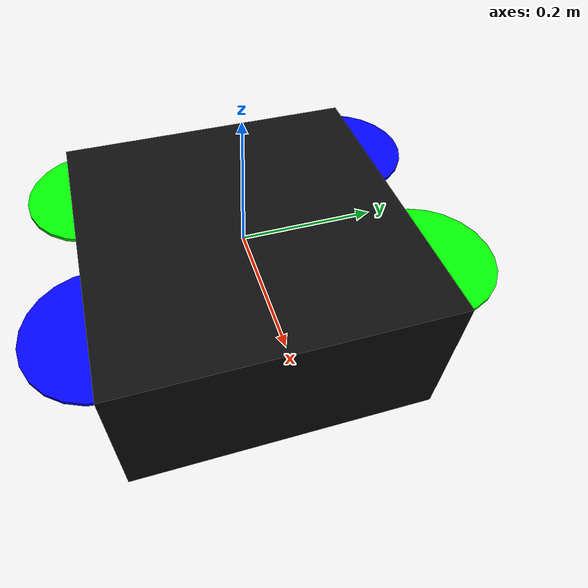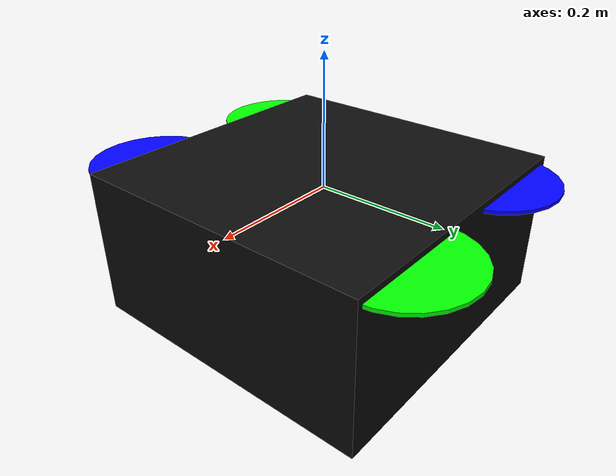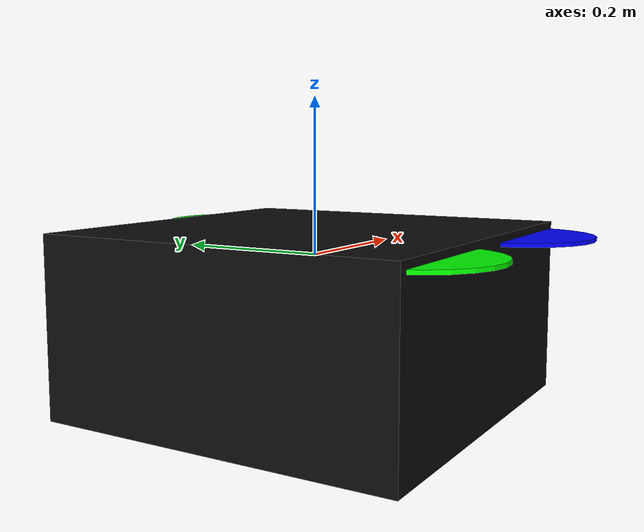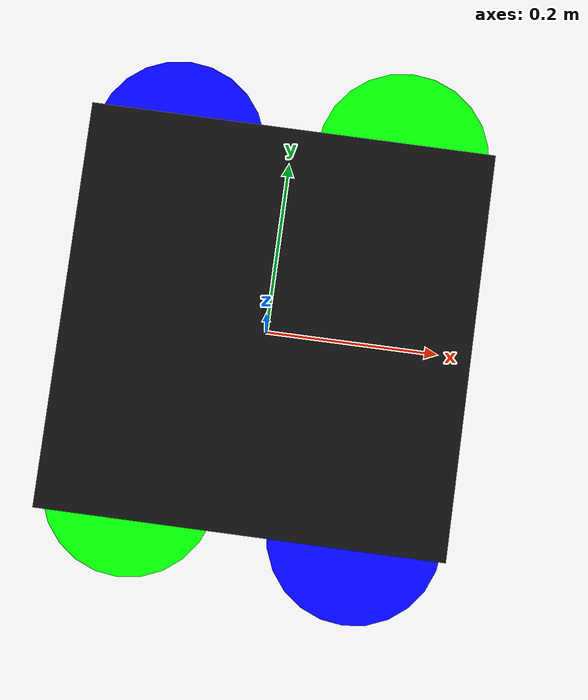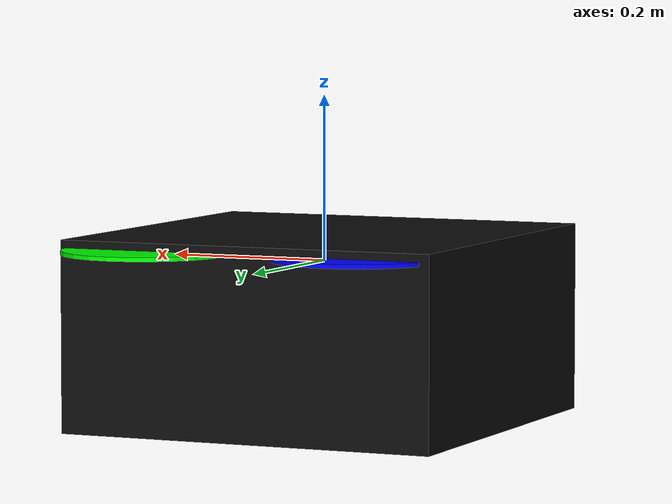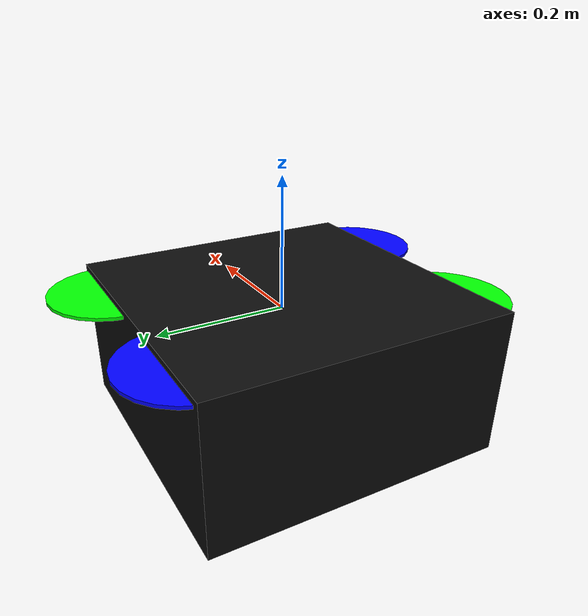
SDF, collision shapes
<?xml version='1.0'?>
<sdf version='1.9'>
  <model name='iris_with_standoffs'>
    <pose>0 0 0 0 0 0</pose>
    <link name='base_link'>
      <velocity_decay>
        <linear>0.0</linear>
        <angular>0.0</angular>
      </velocity_decay>
      <inertial>
        <pose>0 0 0 0 0 0</pose>
        <mass>1.5</mass>
        <inertia>
          <ixx>0.008</ixx>
          <ixy>0</ixy>
          <ixz>0</ixz>
          <iyy>0.015</iyy>
          <iyz>0</iyz>
          <izz>0.017</izz>
        </inertia>
      </inertial>
      <collision name='base_collision'>
        <pose>0 0 -0.08 0 0 0</pose>
        <geometry>
          <box>
            <size>0.47 0.47 0.23</size>
          </box>
        </geometry>
        <surface>
          <contact>
            <ode>
              <max_vel>100.0</max_vel>
              <min_depth>0.001</min_depth>
            </ode>
          </contact>
          <friction>
            <ode>
              <mu>100000.0</mu>
              <mu2>100000.0</mu2>
            </ode>
          </friction>
        </surface>
      </collision>
      <visual name='base_visual'>
        <geometry>
          <mesh>
            <uri>model://iris_with_standoffs/meshes/iris.dae</uri>
          </mesh>
        </geometry>
        <material>
          <ambient>0.05 0.05 0.05</ambient>
          <diffuse>0.05 0.05 0.05</diffuse>
          <specular>1 1 1 1</specular>
          <pbr>
            <metal>
              <metalness>0.5</metalness>
              <roughness>0.5</roughness>
            </metal>
          </pbr>
        </material>
      </visual>

      <visual name='front_left_leg_visual'>
        <pose>0.123 0.22 -0.11 0 0 0</pose>
        <geometry>
          <cylinder>
            <radius>0.005</radius>
            <length>0.17</length>
          </cylinder>
        </geometry>
        <material>
          <ambient>0.05 0.05 0.05</ambient>
          <diffuse>0.05 0.05 0.05</diffuse>
          <specular>0.01 0.01 0.01 1.0</specular>
          <pbr>
            <metal>
              <metalness>0.5</metalness>
              <roughness>0.5</roughness>
            </metal>
          </pbr>
        </material>
      </visual>
      <visual name='front_right_leg_visual'>
        <pose>0.123 -0.22 -0.11 0 0 0</pose>
        <geometry>
          <cylinder>
            <radius>0.005</radius>
            <length>0.17</length>
          </cylinder>
        </geometry>
        <material>
          <ambient>0.05 0.05 0.05</ambient>
          <diffuse>0.05 0.05 0.05</diffuse>
          <specular>0.01 0.01 0.01 1.0</specular>
          <pbr>
            <metal>
              <metalness>0.5</metalness>
              <roughness>0.5</roughness>
            </metal>
          </pbr>
        </material>
      </visual>
      <visual name='rear_left_leg_visual'>
        <pose>-0.140 0.21 -0.11 0 0 0</pose>
        <geometry>
          <cylinder>
            <radius>0.005</radius>
            <length>0.17</length>
          </cylinder>
        </geometry>
        <material>
          <ambient>0.05 0.05 0.05</ambient>
          <diffuse>0.05 0.05 0.05</diffuse>
          <specular>0.01 0.01 0.01 1.0</specular>
          <pbr>
            <metal>
              <metalness>0.5</metalness>
              <roughness>0.5</roughness>
            </metal>
          </pbr>
        </material>
      </visual>
      <visual name='rear_right_leg_visual'>
        <pose>-0.140 -0.21 -0.11 0 0 0</pose>
        <geometry>
          <cylinder>
            <radius>0.005</radius>
            <length>0.17</length>
          </cylinder>
        </geometry>
        <material>
          <ambient>0.05 0.05 0.05</ambient>
          <diffuse>0.05 0.05 0.05</diffuse>
          <specular>0.01 0.01 0.01 1.0</specular>
          <pbr>
            <metal>
              <metalness>0.5</metalness>
              <roughness>0.5</roughness>
            </metal>
          </pbr>
        </material>
      </visual>

    </link>

    <!-- IMU Link (unchanged) -->
    <link name='imu_link'>
      <inertial>
        <pose>0 0 0 0 0 0</pose>
        <mass>0.15</mass>
        <inertia>
          <ixx>0.00001</ixx>
          <ixy>0</ixy>
          <ixz>0</ixz>
          <iyy>0.00002</iyy>
          <iyz>0</iyz>
          <izz>0.00002</izz>
        </inertia>
      </inertial>
      <sensor name="imu_sensor" type="imu">
        <gz_frame_id>imu_link</gz_frame_id>
        <pose degrees="true">0 0 0 180 0 0</pose>
        <always_on>1</always_on>
        <update_rate>1000.0</update_rate>
      </sensor>
    </link>
    <joint name='imu_joint' type='revolute'>
      <child>imu_link</child>
      <parent>base_link</parent>
      <axis>
        <xyz>0 0 1</xyz>
        <limit>
          <lower>0</lower>
          <upper>0</upper>
          <effort>0</effort>
          <velocity>0</velocity>
        </limit>
        <dynamics>
          <damping>1.0</damping>
        </dynamics>
      </axis>
    </joint>

    <link name="lidar_link">
      <!-- Link pose: 5 cm below base_link centre, no rotation -->
      <pose>0 0 -0.05 0 0 0</pose>

      <inertial>
        <!-- TF03-180 mass: 89g -->
        <mass>0.089</mass>
        <inertia>
          <!-- Box 44x43x32 mm inertia (thin slab approximation) -->
          <ixx>0.000034</ixx>
          <ixy>0</ixy>
          <ixz>0</ixz>
          <iyy>0.000035</iyy>
          <iyz>0</iyz>
          <izz>0.000033</izz>
        </inertia>
      </inertial>

      <!-- Physical body: 44x43x32 mm aluminium box (TF03-180 dimensions) -->
      <visual name="lidar_body_visual">
        <pose>0 0 0 0 0 0</pose>
        <geometry>
          <box>
            <size>0.044 0.043 0.032</size>
          </box>
        </geometry>
        <material>
          <ambient>0.2 0.2 0.2 1</ambient>
          <diffuse>0.3 0.3 0.3 1</diffuse>
          <specular>0.5 0.5 0.5 1</specular>
        </material>
      </visual>
      <collision name="lidar_body_collision">
        <pose>0 0 0 0 0 0</pose>
        <geometry>
          <box>
            <size>0.044 0.043 0.032</size>
          </box>
        </geometry>
      </collision>

      <sensor name="tf03_180_lidar" type="gpu_lidar">
        <topic>/lidar_down</topic>

        <pose degrees="true">0 0 0 0 90 0</pose>

        <!-- TF03-180 default update rate: 100 Hz -->
        <update_rate>100</update_rate>

        <lidar>
          <scan>
            <!-- Single-beam sensor: 1 sample, FOV = 0.5 deg = 0.00873 rad -->
            <horizontal>
              <samples>1</samples>
              <resolution>1</resolution>
              <min_angle>-0.004363</min_angle>   <!-- -0.25 deg -->
              <max_angle>0.004363</max_angle>    <!--  +0.25 deg -->
            </horizontal>
            <vertical>
              <samples>1</samples>
              <resolution>1</resolution>
              <min_angle>-0.004363</min_angle>   <!-- -0.25 deg -->
              <max_angle>0.004363</max_angle>    <!--  +0.25 deg -->
            </vertical>
          </scan>

          <range>
            <!-- TF03-180: min 0.1m, max 180m (90% reflectivity), resolution 1cm -->
            <min>0.1</min>
            <max>180.0</max>
            <resolution>0.01</resolution>
          </range>

          <noise>
            <type>gaussian</type>
            <mean>0.0</mean>
            <stddev>0.03</stddev>
          </noise>
        </lidar>

        <always_on>1</always_on>
        <visualize>true</visualize>
      </sensor>
    </link>

    <!-- Fixed joint: rigidly attaches lidar_link to base_link -->
    <joint name='lidar_joint' type='fixed'>
      <child>lidar_link</child>
      <parent>base_link</parent>
    </joint>

    <!-- Rotors (all unchanged) -->
    <link name='rotor_0'>
      <pose>0.13 -0.22 0.023 0 0 0</pose>
      <inertial>
        <pose>0 0 0 0 0 0</pose>
        <mass>0.025</mass>
        <inertia>
          <ixx>9.75e-06</ixx>
          <ixy>0</ixy>
          <ixz>0</ixz>
          <iyy>0.000166704</iyy>
          <iyz>0</iyz>
          <izz>0.000167604</izz>
        </inertia>
      </inertial>
      <collision name='rotor_0_collision'>
        <pose>0 0 0 0 0 0</pose>
        <geometry>
          <cylinder>
            <length>0.005</length>
            <radius>0.1</radius>
          </cylinder>
        </geometry>
        <surface>
          <contact>
            <ode/>
          </contact>
          <friction>
            <ode/>
          </friction>
        </surface>
      </collision>
      <visual name='rotor_0_visual'>
        <pose>0 0 0 0 0 0</pose>
        <geometry>
          <mesh>
            <scale>1 1 1</scale>
            <uri>model://iris_with_standoffs/meshes/iris_prop_ccw.dae</uri>
          </mesh>
        </geometry>
        <material>
          <ambient>0 0 1</ambient>
          <diffuse>0 0 1</diffuse>
          <specular>1 1 1 1</specular>
          <pbr>
            <metal>
              <metalness>0.5</metalness>
              <roughness>0.5</roughness>
            </metal>
          </pbr>
        </material>
      </visual>
      <gravity>1</gravity>
      <velocity_decay/>
      <self_collide>0</self_collide>
    </link>
    <joint name='rotor_0_joint' type='revolute'>
      <child>rotor_0</child>
      <parent>base_link</parent>
      <axis>
        <xyz>0 0 1</xyz>
        <limit>
          <lower>-1e+16</lower>
          <upper>1e+16</upper>
        </limit>
        <dynamics>
          <damping>0.004</damping>
        </dynamics>
      </axis>
      <physics>
        <ode>
          <implicit_spring_damper>1</implicit_spring_damper>
        </ode>
      </physics>
    </joint>
    <link name='rotor_1'>
      <pose>-0.13 0.2 0.023 0 0 0</pose>
      <inertial>
        <pose>0 0 0 0 0 0</pose>
        <mass>0.025</mass>
        <inertia>
          <ixx>9.75e-06</ixx>
          <ixy>0</ixy>
          <ixz>0</ixz>
          <iyy>0.000166704</iyy>
          <iyz>0</iyz>
          <izz>0.000167604</izz>
        </inertia>
      </inertial>
      <collision name='rotor_1_collision'>
        <pose>0 0 0 0 0 0</pose>
        <geometry>
          <cylinder>
            <length>0.005</length>
            <radius>0.1</radius>
          </cylinder>
        </geometry>
        <surface>
          <contact>
            <ode/>
          </contact>
          <friction>
            <ode/>
          </friction>
        </surface>
      </collision>
      <visual name='rotor_1_visual'>
        <pose>0 0 0 0 0 0</pose>
        <geometry>
          <mesh>
            <scale>1 1 1</scale>
            <uri>model://iris_with_standoffs/meshes/iris_prop_ccw.dae</uri>
          </mesh>
        </geometry>
        <material>
          <ambient>0 0 1 1</ambient>
          <diffuse>0 0 1 1</diffuse>
          <specular>1 1 1 1</specular>
          <pbr>
            <metal>
              <metalness>0.5</metalness>
              <roughness>0.5</roughness>
            </metal>
          </pbr>
        </material>
      </visual>
      <gravity>1</gravity>
      <velocity_decay/>
      <self_collide>0</self_collide>
    </link>
    <joint name='rotor_1_joint' type='revolute'>
      <child>rotor_1</child>
      <parent>base_link</parent>
      <axis>
        <xyz>0 0 1</xyz>
        <limit>
          <lower>-1e+16</lower>
          <upper>1e+16</upper>
        </limit>
        <dynamics>
          <damping>0.004</damping>
        </dynamics>
      </axis>
      <physics>
        <ode>
          <implicit_spring_damper>1</implicit_spring_damper>
        </ode>
      </physics>
    </joint>
    <link name='rotor_2'>
      <pose>0.13 0.22 0.023 0 0 0</pose>
      <inertial>
        <pose>0 0 0 0 0 0</pose>
        <mass>0.025</mass>
        <inertia>
          <ixx>9.75e-06</ixx>
          <ixy>0</ixy>
          <ixz>0</ixz>
          <iyy>0.000166704</iyy>
          <iyz>0</iyz>
          <izz>0.000167604</izz>
        </inertia>
      </inertial>
      <collision name='rotor_2_collision'>
        <pose>0 0 0 0 0 0</pose>
        <geometry>
          <cylinder>
            <length>0.005</length>
            <radius>0.1</radius>
          </cylinder>
        </geometry>
        <surface>
          <contact>
            <ode/>
          </contact>
          <friction>
            <ode/>
          </friction>
        </surface>
      </collision>
      <visual name='rotor_2_visual'>
        <pose>0 0 0 0 0 0</pose>
        <geometry>
          <mesh>
            <scale>1 1 1</scale>
            <uri>model://iris_with_standoffs/meshes/iris_prop_cw.dae</uri>
          </mesh>
        </geometry>
        <material>
          <ambient>0 1 0</ambient>
          <diffuse>0 1 0</diffuse>
          <specular>1 1 1 1</specular>
          <pbr>
            <metal>
              <metalness>0.5</metalness>
              <roughness>0.5</roughness>
            </metal>
          </pbr>
        </material>
      </visual>
      <gravity>1</gravity>
      <velocity_decay/>
      <self_collide>0</self_collide>
    </link>
    <joint name='rotor_2_joint' type='revolute'>
      <child>rotor_2</child>
      <parent>base_link</parent>
      <axis>
        <xyz>0 0 1</xyz>
        <limit>
          <lower>-1e+16</lower>
          <upper>1e+16</upper>
        </limit>
        <dynamics>
          <damping>0.004</damping>
        </dynamics>
      </axis>
      <physics>
        <ode>
          <implicit_spring_damper>1</implicit_spring_damper>
        </ode>
      </physics>
    </joint>
    <link name='rotor_3'>
      <pose>-0.13 -0.2 0.023 0 0 0</pose>
      <inertial>
        <pose>0 0 0 0 0 0</pose>
        <mass>0.025</mass>
        <inertia>
          <ixx>9.75e-06</ixx>
          <ixy>0</ixy>
          <ixz>0</ixz>
          <iyy>0.000166704</iyy>
          <iyz>0</iyz>
          <izz>0.000167604</izz>
        </inertia>
      </inertial>
      <collision name='rotor_3_collision'>
        <pose>0 0 0 0 0 0</pose>
        <geometry>
          <cylinder>
            <length>0.005</length>
            <radius>0.1</radius>
          </cylinder>
        </geometry>
        <surface>
          <contact>
            <ode/>
          </contact>
          <friction>
            <ode/>
          </friction>
        </surface>
      </collision>
      <visual name='rotor_3_visual'>
        <pose>0 0 0 0 0 0</pose>
        <geometry>
          <mesh>
            <scale>1 1 1</scale>
            <uri>model://iris_with_standoffs/meshes/iris_prop_cw.dae</uri>
          </mesh>
        </geometry>
        <material>
          <ambient>0 1 0</ambient>
          <diffuse>0 1 0</diffuse>
          <specular>1 1 1 1</specular>
          <pbr>
            <metal>
              <metalness>0.5</metalness>
              <roughness>0.5</roughness>
            </metal>
          </pbr>
        </material>
      </visual>
      <gravity>1</gravity>
      <velocity_decay/>
      <self_collide>0</self_collide>
    </link>
    <joint name='rotor_3_joint' type='revolute'>
      <child>rotor_3</child>
      <parent>base_link</parent>
      <axis>
        <xyz>0 0 1</xyz>
        <limit>
          <lower>-1e+16</lower>
          <upper>1e+16</upper>
        </limit>
        <dynamics>
          <damping>0.004</damping>
        </dynamics>
      </axis>
      <physics>
        <ode>
          <implicit_spring_damper>1</implicit_spring_damper>
        </ode>
      </physics>
    </joint>

  </model>
</sdf>
